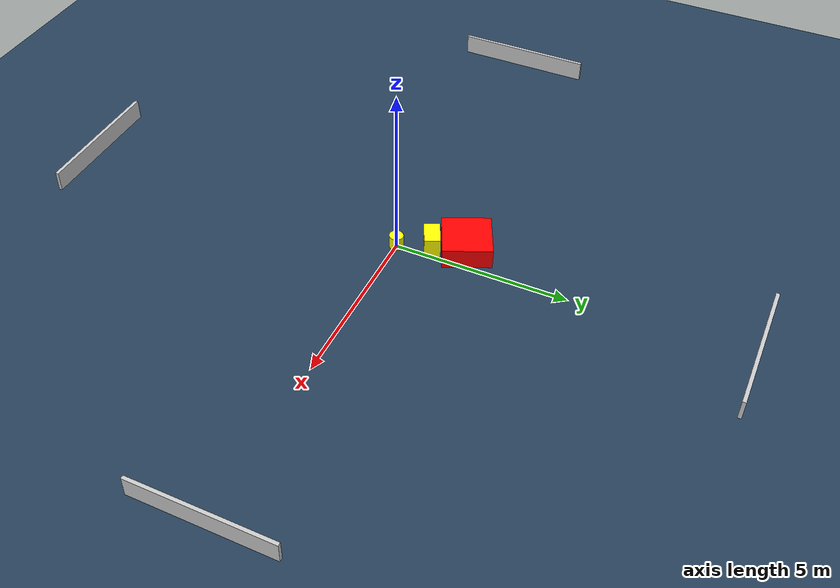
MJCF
<?xml version="1.0" ?>
<mujoco model="generated_environment">
  <option timestep="0.01" integrator="RK4" cone="elliptic"/>
  <default>
    <geom density="1"/>
  </default>
  <asset>
    <texture builtin="gradient" height="3072" name="skybox" rgb1="0.3 0.5 0.7" rgb2="0 0 0" type="skybox" width="512"/>
    <texture builtin="checker" height="300" name="groundplane" rgb1="0.2 0.3 0.4" rgb2="0.1 0.2 0.3" type="2d" width="300"/>
    <material name="groundplane" reflectance="0.2" texrepeat="5 5" texture="groundplane"/>
  </asset>
  <worldbody>
    <light dir="0 0 -1" directional="true" pos="0 0 1.5"/>
    <geom condim="3" friction="0.5 0.005 0.001" material="groundplane" name="floor" pos="0 0 0" size="0 0 0.05" type="plane"/>
    <body name="walls">
      <geom name="wall_1" condim="4" pos="-10.0 0.0 0.3" rgba="0.800000011920929 0.800000011920929 0.800000011920929 1.0" size="0.05 2.0 0.3" type="box"/>
      <geom name="wall_2" condim="4" pos="10.0 0.0 0.3" rgba="0.800000011920929 0.800000011920929 0.800000011920929 1.0" size="0.05 2.0 0.3" type="box"/>
      <geom name="wall_3" condim="4" pos="0.0 -10.0 0.3" rgba="0.800000011920929 0.800000011920929 0.800000011920929 1.0" size="2.0 0.05 0.3" type="box"/>
      <geom name="wall_4" condim="4" pos="0.0 10.0 0.3" rgba="0.800000011920929 0.800000011920929 0.800000011920929 1.0" size="2.0 0.05 0.3" type="box"/>
    </body>
    <body name="robot">
      <joint name="joint_x" type="slide" pos="0 0 0" axis="1 0 0"/>
      <joint name="joint_y" type="slide" pos="0 0 0" axis="0 1 0"/>
      <geom name="robot" type="cylinder" pos="0.0 0.0 0.2" size="0.2 0.2 0.0" mass="5.0" friction="1.0 0.005 0.0001" condim="4" rgba="1.0 1.0 0.0 1.0"/>
    </body>
    <body name="obstacle_1_movable">
      <geom name="obstacle_1_movable" condim="4" pos="-0.33454284735290507 0.9294454773032708 0.3" euler="0 0 25.034592678957125" friction="0.0 0.005 0.001" rgba="1.0 1.0 0.0 1.0" size="0.36519602408749297 0.22696388109863952 0.3" type="box" mass="0.1"/>
      <joint type="free"/>
    </body>
    <body name="obstacle_2_static">
      <geom name="obstacle_2_static" condim="4" pos="-0.660023018256466 1.829164330290173 0.3" euler="0 0 114.25108807106464" friction="0.0 0.005 0.001" rgba="1.0 0.0 0.0 1.0" size="0.6941264961844338 0.6878825353871357 0.3" type="box"/>
    </body>
  </worldbody>
  <actuator>
    <motor name="actuator_x" joint="joint_x" gear="1" ctrlrange="-1 1"/>
    <motor name="actuator_y" joint="joint_y" gear="1" ctrlrange="-1 1"/>
  </actuator>
</mujoco>
